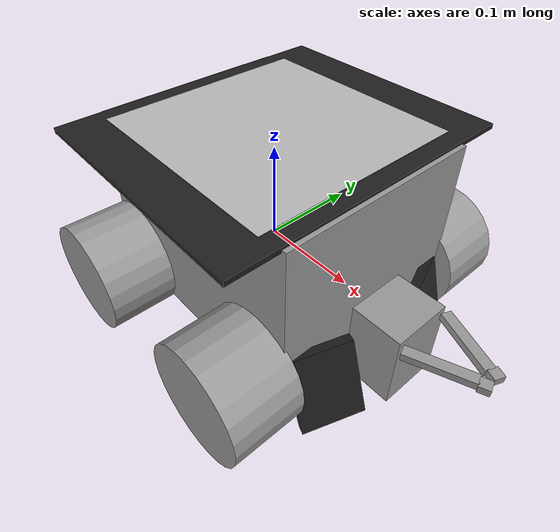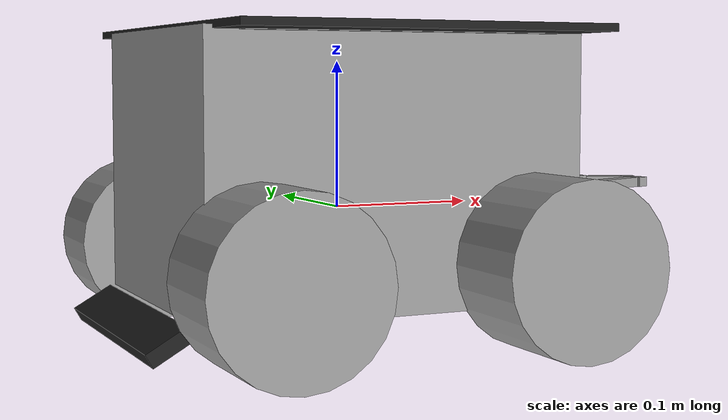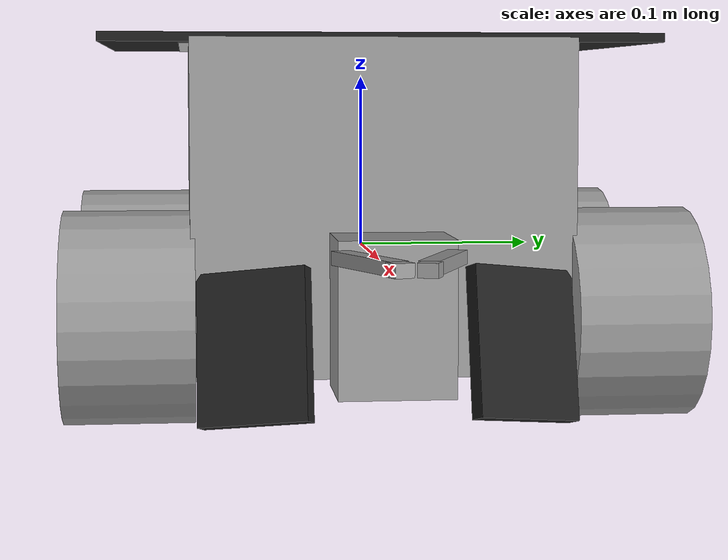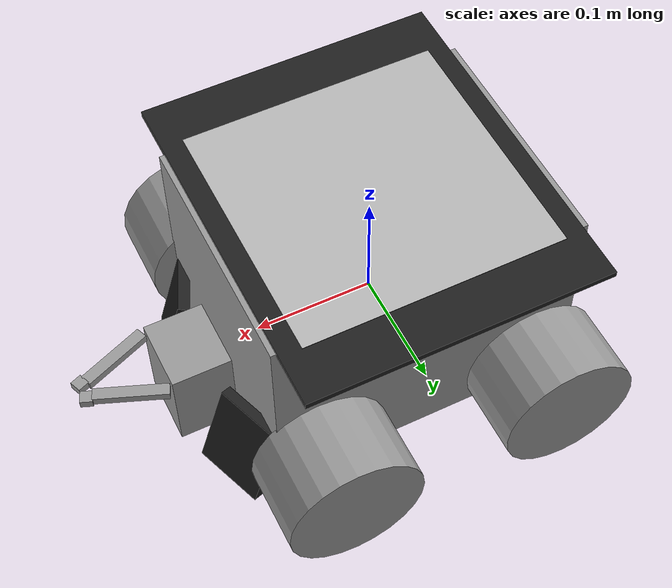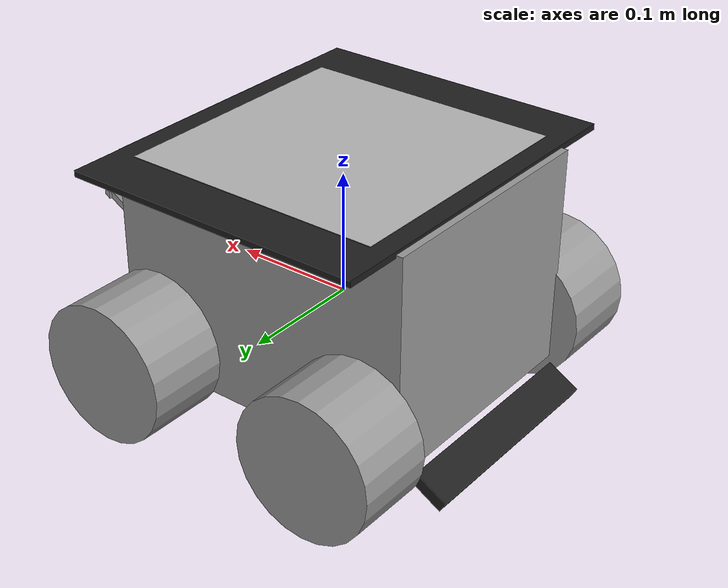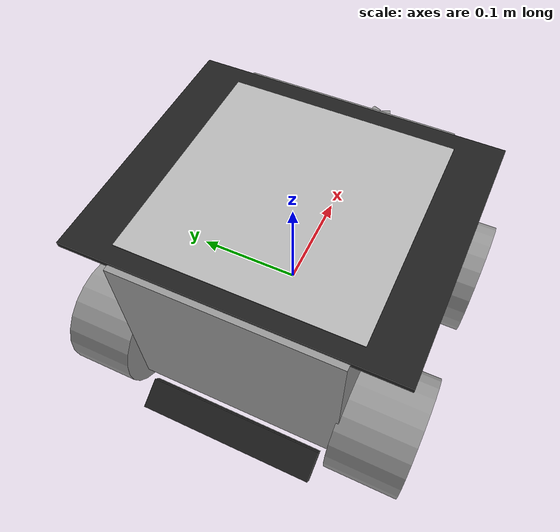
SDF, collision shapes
<?xml version='1.0'?>
<sdf version='1.4'>
	<model name="achilles">

		<static>false</static>

		<link name='base_link'>
			<inertial>
				<mass>10.0</mass>
				<inertia>
					<ixx>0.04</ixx>
					<ixy>0.0</ixy>
					<ixz>0.0</ixz>
					<iyy>0.04</iyy>
					<iyz>0.0</iyz>
					<izz>0.07</izz>
				</inertia>
			</inertial>
			<collision name='collision'>
				<pose>0 0 0.03 0 0 0</pose>
				<geometry>
					<box>
						<size>0.26 0.205 0.18</size>
					</box>
				</geometry>
			</collision>
			<visual name='visual'>
				<pose>0 0 -0.06 0 0 0</pose>
				<geometry>
					<mesh>
						<uri>model://swarmie/meshes/Body.stl</uri>
					</mesh>
				</geometry>
				<material>
					<script>
						<name>Gazebo/Grey</name>
					</script>
				</material>
			</visual>
		</link>

		<link name='top'>
			<pose>0.0006 0 0.12 0 0 0</pose>
			<inertial>
				<mass>0.2</mass>
				<inertia>
					<ixx>0.0001</ixx>
					<ixy>0.0</ixy>
					<ixz>0.0</ixz>
					<iyy>0.0001</iyy>
					<iyz>0.0</iyz>
					<izz>0.0002</izz>
				</inertia>
			</inertial>
			<collision name='collision'>
				<pose>0 0 0 0 0 0</pose>
				<geometry>
					<box>
						<size>0.25 0.30 0.005</size>
					</box>
				</geometry>
			</collision>
			<visual name='visual'>
				<geometry>
					<mesh>
						<uri>model://swarmie/meshes/CoverPlate.stl</uri>
					</mesh>
				</geometry>
				<material>
					<script>
						<name>Gazebo/FlatBlack</name>
					</script>
				</material>
			</visual>
		</link>

		<joint name="top" type="revolute">
			<parent>base_link</parent>
			<child>top</child>
			<axis>
				<xyz>0 0 0</xyz>
				<limit>
					<upper>0</upper>
					<lower>0</lower>
				</limit>
			</axis>
		</joint>

		<link name='top_apriltag'>
		  <pose>0 0 0.12 0 0 0</pose>
			<collision name='collision'>
				<geometry>
					<box>
						<size>0.2159 0.2159 0.006</size>
					</box>
				</geometry>
			</collision>
			<visual name='visual'>
				<geometry>
					<box>
						<size>0.2159 0.2159 0.006</size>
					</box>
				</geometry>
				<material>
					<script>
						<uri>model://swarmie/materials/scripts</uri>
						<uri>model://swarmie/materials/textures</uri>
						<name>apriltag_21</name>
					</script>
				</material>
			</visual>
		</link>

		<joint name="top_apriltag" type="revolute">
			<parent>base_link</parent>
			<child>top_apriltag</child>
			<axis>
				<xyz>0 0 0</xyz>
				<limit>
					<upper>0</upper>
					<lower>0</lower>
				</limit>
			</axis>
		</joint>

		<!--> Begin Cowcatcher Front <-->

		<link name='CowCatcherFront'>
			<pose>0.1675 0 -0.08 1.57079 0 0</pose>
			<inertial>
				<mass>0.2</mass>
				<inertia>
					<ixx>0.0001</ixx>
					<ixy>0.0</ixy>
					<ixz>0.0</ixz>
					<iyy>0.0001</iyy>
					<iyz>0.0</iyz>
					<izz>0.0002</izz>
				</inertia>
			</inertial>

			<collision name='left_collision'>
				<pose>-0.02 0.04 -0.07 0 0.4 0.3</pose>
				<geometry>
					<box>
					  <size>0.01 0.08 0.06</size>
					</box>
				</geometry>
			</collision>

			<collision name='right_collision'>
				<pose>-0.02 0.04 0.07 0 -0.4 0.3</pose>
				<geometry>
					<box>
					  <size>0.01 0.08 0.06</size>
					</box>
				</geometry>
			</collision>

			<visual name='visual'>
				<geometry>
					<mesh>
						<uri>model://swarmie/meshes/CowCatcherFront.stl</uri>
						<scale>0.001 0.001 0.001</scale>
					</mesh>
				</geometry>
				<material>
					<script>
						<name>Gazebo/FlatBlack</name>
					</script>
				</material>
			</visual>
		</link>

		<joint name="CowCatcherFront" type="revolute">
			<parent>base_link</parent>
			<child>CowCatcherFront</child>
			<axis>
				<xyz>0 0 0</xyz>
				<limit>
					<upper>0</upper>
					<lower>0</lower>
				</limit>
			</axis>
		</joint>

		<!--> End Cowcatcher Front <-->

		<!--> Begin Cowcatcher Rear <-->

		<link name='CowCatcherRear'>
			<pose>-0.1275 -0.1 -0.04 1.57079 0 3.1415</pose>
			<inertial>
				<mass>0.2</mass>
				<inertia>
					<ixx>0.0001</ixx>
					<ixy>0.0</ixy>
					<ixz>0.0</ixz>
					<iyy>0.0001</iyy>
					<iyz>0.0</iyz>
					<izz>0.0002</izz>
				</inertia>
			</inertial>

			<collision name='lower_collision'>
				<pose>0.02 -0.03 0.1 0 0 1.05</pose>
				<geometry>
					<box>
					  <size>0.01 0.03 0.18</size>
					</box>
				</geometry>
			</collision>

			<visual name='visual'>
				<geometry>
					<mesh>
						<uri>model://swarmie/meshes/CowCatcherRear.stl</uri>
						<scale>0.001 0.001 0.001</scale>
					</mesh>
				</geometry>
				<material>
					<script>
						<name>Gazebo/FlatBlack</name>
					</script>
				</material>
			</visual>
		</link>

		<joint name="CowCatcherRear" type="revolute">
			<parent>base_link</parent>
			<child>CowCatcherRear</child>
			<axis>
				<xyz>0 0 0</xyz>
				<limit>
					<upper>0</upper>
					<lower>0</lower>
				</limit>
			</axis>
		</joint>

		<!--> End Cowcatcher Rear <-->

	<link name="gripper_wrist">
			<inertial>
				<mass>0.085</mass>
				<inertia>
					<ixx>0.00005</ixx>
					<ixy>0.0</ixy>
					<ixz>0.0</ixz>
					<iyy>0.00006</iyy>
					<iyz>0.0</iyz>
					<izz>0.00005</izz>
				</inertia>
			</inertial>
			<visual name="visual">
				<pose>0 0 -0.06 0 0 0</pose>
				<geometry>
					<mesh>
						<uri>model://swarmie/meshes/GripperWrist.stl</uri>
					</mesh>
				</geometry>
				<material>
					<script>
						<name>Gazebo/Grey</name>
					</script>
				</material>
			</visual>
			<collision name="collision">
				<pose>0.16 0 -0.022 0 0 1.57</pose>
				<geometry>
					<box>
						<size>0.06 0.05 0.08</size>
					</box>
				</geometry>
			</collision>
		</link>

		<joint name="gripper_wrist_joint" type="revolute">
			<parent>base_link</parent>
			<child>gripper_wrist</child>
			<pose>0.136 0 -0.029 0 0 0</pose>
			<axis>
				<xyz>0 1 0</xyz>
				<limit>
					<upper>0.7854</upper>
					<lower>0.0</lower>
				</limit>
				<dynamics>
				  <damping>0.3</damping>
				</dynamics>
			</axis>
		</joint>

		<link name="gripper_left_finger">
			<inertial>
				<mass>0.005</mass>
				<inertia>
					<ixx>0.000002</ixx>
					<ixy>0.0</ixy>
					<ixz>0.0</ixz>
					<iyy>0.000002</iyy>
					<iyz>0.0</iyz>
					<izz>0.000004</izz>
				</inertia>
			</inertial>
			<collision name="collision">
				<pose>0.215 0.018 0.01 0 0 -0.38</pose>
				<geometry>
					<box>
						<size>0.06 0.01 0.007</size>
					</box>
				</geometry>
				<surface>
					<friction>
						<ode>
							<mu>0.8</mu>
							<mu2>0.7</mu2>
						</ode>
					</friction>
				</surface>
			</collision>
			<collision name="collision2">
				<pose>0.2475 0.007 0.01 0 0 -0.38</pose>
				<geometry>
					<box>
						<size>0.01 0.01 0.007</size>
					</box>
				</geometry>
				<surface>
					<friction>
						<ode>
							<mu>0.8</mu>
							<mu2>0.7</mu2>
						</ode>
					</friction>
				</surface>
			</collision>
			<visual name="visual">
				<pose>0 0 -0.06 0 0 0.0</pose>
				<geometry>
					<mesh>
						<uri>model://swarmie/meshes/GripperFingerLeft.stl</uri>
					</mesh>
				</geometry>
				<material>
					<script>
						<name>Gazebo/Grey</name>
					</script>
				</material>
			</visual>
			<sensor name='finger' type='contact'>
			  <contact>
			    <collision>collision</collision>
			  </contact>
			</sensor>
		</link>

		<joint name ="gripper_left_finger_joint" type="revolute">
			<parent>gripper_wrist</parent>
			<child>gripper_left_finger</child>
			<pose>0.1825 0.02175 0 0 0 0</pose>
			<axis>
				<xyz>0 0 1</xyz>
				<limit>
					<upper>0.7854</upper>
					<lower>0.0</lower>
				</limit>
				<dynamics>
				  <damping>0.3</damping>
				</dynamics>
			</axis>
		</joint>

		<link name="gripper_right_finger">
			<inertial>
				<mass>0.005</mass>
				<inertia>
					<ixx>0.000002</ixx>
					<ixy>0.0</ixy>
					<ixz>0.0</ixz>
					<iyy>0.000002</iyy>
					<iyz>0.0</iyz>
					<izz>0.000004</izz>
				</inertia>
			</inertial>
			<collision name="collision">
				<pose>0.215 -0.018 0.01 0 0 0.38</pose>
				<geometry>
					<box>
						<size>0.06 0.01 0.007</size>
					</box>
				</geometry>
				<surface>
					<friction>
						<ode>
							<mu>0.8</mu>
							<mu2>0.7</mu2>
						</ode>
					</friction>
				</surface>
			</collision>
			<collision name="collision2">
				<pose>0.2475 -0.007 0.01 0 0 0.38</pose>
				<geometry>
					<box>
						<size>0.01 0.01 0.007</size>
					</box>
				</geometry>
				<surface>
					<friction>
						<ode>
							<mu>0.8</mu>
							<mu2>0.7</mu2>
						</ode>
					</friction>
				</surface>
			</collision>
			<visual name="visual">
				<pose>0 0 -0.06 0 0 0</pose>
				<geometry>
					<mesh>
						<uri>model://swarmie/meshes/GripperFingerRight.stl</uri>
					</mesh>
				</geometry>
				<material>
					<script>
						<name>Gazebo/Grey</name>
					</script>
				</material>
			</visual>
			<sensor name='finger' type='contact'>
			  <contact>
			    <collision>collision</collision>
			  </contact>
			</sensor>
		</link>

		<joint name ="gripper_right_finger_joint" type="revolute">
			<parent>gripper_wrist</parent>
			<child>gripper_right_finger</child>
			<pose>0.1825 -0.02175 0 0 0 0</pose>
			<axis>
				<xyz>0 0 1</xyz>
				<limit>
					<upper>0.0</upper>
					<lower>-0.7854</lower>
				</limit>
				<dynamics>
				  <damping>0.3</damping>
				</dynamics>
			</axis>
		</joint>

		<link name="left_front_wheel">
			<pose>0.095 0.135 -0.03 0 0 0</pose>
			<inertial>
				<mass>0.5</mass>
				<inertia>
					<ixx>0.00635</ixx>
					<ixy>0.0</ixy>
					<ixz>0.0</ixz>
					<iyy>0.00635</iyy>
					<iyz>0.0</iyz>
					<izz>0.009</izz>
				</inertia>
			</inertial>
			<collision name="collision">
				<pose>0 0 0 1.5708 0 0</pose>
				<geometry>
					<cylinder>
						<radius>.0575</radius>
						<length>.07</length>
 					</cylinder>
				</geometry>
				<surface>
					<friction>
						<ode>
							<mu>0.8</mu>
							<mu2>0.7</mu2>
						</ode>
					</friction>
				</surface>
			</collision>
			<visual name="visual">
				<geometry>
					<mesh>
						<uri>model://swarmie/meshes/TireWheelLeft.stl</uri>
					</mesh>
				</geometry>
				<material>
					<script>
						<name>Gazebo/Grey</name>
					</script>
				</material>
			</visual>
		</link>

		<joint name="left_front" type="revolute">
			<parent>base_link</parent>
			<child>left_front_wheel</child>
			<axis>
				<xyz>0 1 0</xyz>
			</axis>
		</joint>

		<link name="right_front_wheel">
			<pose>0.095 -0.135 -0.03 0 0 0</pose>
			<inertial>
				<mass>0.5</mass>
				<inertia>
					<ixx>0.00635</ixx>
					<ixy>0.0</ixy>
					<ixz>0.0</ixz>
					<iyy>0.00635</iyy>
					<iyz>0.0</iyz>
					<izz>0.009</izz>
				</inertia>
			</inertial>
			<collision name="collision">
				<pose>0 0 0 -1.5708 0 0</pose>
				<geometry>
					<cylinder>
						<radius>.0575</radius>
						<length>.07</length>
					</cylinder>
				</geometry>
				<surface>
					<friction>
						<ode>
							<mu>0.8</mu>
							<mu2>0.7</mu2>
						</ode>
					</friction>
				</surface>
			</collision>
			<visual name="visual">
				<geometry>
					<mesh>
						<uri>model://swarmie/meshes/TireWheelRight.stl</uri>
					</mesh>
				</geometry>
				<material>
					<script>
						<name>Gazebo/Grey</name>
					</script>
				</material>
			</visual>
		</link>

		<joint name="right_front" type="revolute">
			<parent>base_link</parent>
			<child>right_front_wheel</child>
			<axis>
				<xyz>0 1 0</xyz>
			</axis>
		</joint>

		<link name="left_rear_wheel">
			<pose>-0.095 0.135 -0.03 0 0 0</pose>
			<inertial>
				<mass>0.5</mass>
				<inertia>
					<ixx>0.00635</ixx>
					<ixy>0.0</ixy>
					<ixz>0.0</ixz>
					<iyy>0.00635</iyy>
					<iyz>0.0</iyz>
					<izz>0.009</izz>
				</inertia>
			</inertial>
			<collision name="collision">
				<pose>0 0 0 1.5708 0 0</pose>
				<geometry>
					<cylinder>
						<radius>.0575</radius>
						<length>.065</length>
					</cylinder>
				</geometry>
				<surface>
					<friction>
						<ode>
							<mu>0.8</mu>
							<mu2>0.7</mu2>
						</ode>
					</friction>
				</surface>
			</collision>
			<visual name="visual">
				<geometry>
					<mesh>
						<uri>model://swarmie/meshes/TireWheelLeft.stl</uri>
					</mesh>
				</geometry>
				<material>
					<script>
						<name>Gazebo/Grey</name>
					</script>
				</material>
			</visual>
		</link>

		<joint name="left_rear" type="revolute">
			<parent>base_link</parent>
			<child>left_rear_wheel</child>
			<axis>
				<xyz>0 1 0</xyz>
			</axis>
		</joint>

		<link name="right_rear_wheel">
			<pose>-0.095 -0.135 -0.03 0 0 0</pose>
			<inertial>
				<mass>0.5</mass>
				<inertia>
					<ixx>0.00635</ixx>
					<ixy>0.0</ixy>
					<ixz>0.0</ixz>
					<iyy>0.00635</iyy>
					<iyz>0.0</iyz>
					<izz>0.009</izz>
				</inertia>
			</inertial>
			<collision name="collision">
				<pose>0 0 0 -1.5708 0 0</pose>
				<geometry>
					<cylinder>
						<radius>.0575</radius>
						<length>.07</length>
					</cylinder>
				</geometry>
				<surface>
					<friction>
						<ode>
							<mu>0.8</mu>
							<mu2>0.7</mu2>
						</ode>
					</friction>
				</surface>
			</collision>
			<visual name="visual">
				<geometry>
					<mesh>
						<uri>model://swarmie/meshes/TireWheelRight.stl</uri>
					</mesh>
				</geometry>
				<material>
					<script>
						<name>Gazebo/Grey</name>
					</script>
				</material>
			</visual>
		</link>

		<joint name="right_rear" type="revolute">
			<parent>base_link</parent>
			<child>right_rear_wheel</child>
			<axis>
				<xyz>0 1 0</xyz>
			</axis>
		</joint>

		<joint name="us_center_joint" type="revolute">
			<parent>base_link</parent>
			<child>us_center_link</child>
			<axis>
				<xyz>0 0 1</xyz>
				<limit>
					<upper>0</upper>
					<lower>0</lower>
				</limit>
			</axis>
		</joint>

		<link name="us_center_link">
			<sensor type="ray" name="us_center_sensor">
				<pose>0.15 0 0.053 0 0 0</pose>
				<visualize>false</visualize>
				<update_rate>5</update_rate>
				<ray>
					<scan>
						<horizontal>
							<samples>3</samples>
							<resolution>1.0</resolution>
							<min_angle>-.478</min_angle>
							<max_angle>0.478</max_angle>
						</horizontal>
					</scan>
					<range>
						<min>0.010</min>
						<max>3</max>
						<resolution>0.01</resolution>
					</range>
				</ray>
				<plugin name="us" filename="libhector_gazebo_ros_sonar.so">
					<gaussianNoise>0.005</gaussianNoise>
					<topicName>/achilles/sonarCenter</topicName>
					<frameId>us_center_link</frameId>
				</plugin>
			</sensor>
		</link>

		<joint name="us_right_joint" type="revolute">
			<parent>base_link</parent>
			<child>us_right_link</child>
			<axis>
				<xyz>0 0 1</xyz>
				<limit>
					<upper>0</upper>
					<lower>0</lower>
				</limit>
			</axis>
		</joint>

		<link name="us_right_link">
			<sensor type="ray" name="us_right_sensor">
				<pose>0.15 -0.07 0.053 0.0 0.0 -0.43633</pose>
				<visualize>false</visualize>
				<update_rate>5</update_rate>
				<ray>
					<scan>
						<horizontal>
							<samples>3</samples>
							<resolution>1.0</resolution>
							<min_angle>-.478</min_angle>
							<max_angle>0.478</max_angle>
						</horizontal>
					</scan>
					<range>
						<min>0.010</min>
						<max>3</max>
						<resolution>0.01</resolution>
					</range>
				</ray>
				<plugin name="us" filename="libhector_gazebo_ros_sonar.so">
					<gaussianNoise>0.005</gaussianNoise>
					<topicName>/achilles/sonarRight</topicName>
					<frameId>us_center_link</frameId>
				</plugin>
			</sensor>
		</link>

		<joint name="us_left_joint" type="revolute">
			<parent>base_link</parent>
			<child>us_left_link</child>
			<axis>
				<xyz>0 0 1</xyz>
				<limit>
					<upper>0</upper>
					<lower>0</lower>
				</limit>
			</axis>
		</joint>

		<link name="us_left_link">
			<sensor type="ray" name="us_left_sensor">
				<pose>0.15 0.07 0.053 0.0 0.0 0.43633</pose>
				<visualize>false</visualize>
				<update_rate>5</update_rate>
				<ray>
					<scan>
						<horizontal>
							<samples>3</samples>
							<resolution>1.0</resolution>
							<min_angle>-.478</min_angle>
							<max_angle>0.478</max_angle>
						</horizontal>
					</scan>
					<range>
						<min>0.010</min>
						<max>3</max>
						<resolution>0.01</resolution>
					</range>
				</ray>
				<plugin name="us" filename="libhector_gazebo_ros_sonar.so">
					<gaussianNoise>0.005</gaussianNoise>
					<topicName>/achilles/sonarLeft</topicName>
					<frameId>us_center_link</frameId>
				</plugin>
			</sensor>
		</link>

		<joint name="camera_joint" type="revolute">
			<parent>base_link</parent>
			<child>camera_link</child>
			<axis>
				<xyz>0 1 0</xyz>
				<limit>
					<upper>0</upper>
					<lower>0</lower>
				</limit>
			</axis>
		</joint>

		<link name="camera_link">
			<inertial>
				<mass>0.2</mass>
				<inertia>
					<ixx>0.0001</ixx>
					<ixy>0.0</ixy>
					<ixz>0.0</ixz>
					<iyy>0.0001</iyy>
					<iyz>0.0</iyz>
					<izz>0.0002</izz>
				</inertia>
			</inertial>
			<sensor type="camera" name="camera">
				<pose>0.145 -0.0162 0.088 0.0 0.628 0.0</pose>
				<visualize>false</visualize>
				<update_rate>6.0</update_rate>
				<camera name="head">
					<horizontal_fov>1.0123</horizontal_fov>
					<image>
						<width>320</width>
						<height>240</height>
						<format>B8G8R8</format>
					</image>
					<clip>
						<near>0.02</near>
						<far>300</far>
					</clip>
					<noise>
						<type>gaussian</type>
						<mean>0.0</mean>
						<stddev>0.007</stddev>
					</noise>
				</camera>
				<plugin name="camera_controller" filename="libgazebo_ros_camera.so">
					<alwaysOn>true</alwaysOn>
					<updateRate>0.0</updateRate>
					<cameraName>/achilles/camera</cameraName>
					<imageTopicName>/achilles/camera/image</imageTopicName>
					<cameraInfoTopicName>/achilles/camera/info</cameraInfoTopicName>
					<frameName>camera_link</frameName>
					<hackBaseline>0.1</hackBaseline>
					<distortionK1>0.0</distortionK1>
					<distortionK2>0.0</distortionK2>
					<distortionK3>0.0</distortionK3>
					<distortionT1>0.0</distortionT1>
					<distortionT2>0.0</distortionT2>
					<CxPrime>0.0</CxPrime>
					<Cx>0.0</Cx>
					<Cy>0.0</Cy>
					<focalLength>0.0</focalLength>
				</plugin>
			</sensor>
		</link>

		<!-- Gripper plugin-->
		<plugin name="gripper_sim" filename="libgazebo_plugins_gripper.so">
			<!-- required: joint definitions -->
			<wristJoint>gripper_wrist_joint</wristJoint>
			<leftFingerJoint>gripper_left_finger_joint</leftFingerJoint>
			<rightFingerJoint>gripper_right_finger_joint</rightFingerJoint>

			<!-- required: data input topics for this plugin -->
			<wristTopic>/achilles/wristAngle/cmd</wristTopic>
			<fingerTopic>/achilles/fingerAngle/cmd</fingerTopic>

			<!-- optional: print debug info to the console -->
			<debug>
				<!-- true (debug mode is on) or false (debug mode is off) -->
				<printToConsole>false</printToConsole>
				<!-- time (in simulated seconds) between debug print statements -->
				<printDelayInSeconds>5.0</printDelayInSeconds>
			</debug>

			<!-- optional: the refresh rate of the gripper and all debugging output -->
			<!-- this value is the number of updates performed per second -->
			<!-- warning: low values (i.e. < 100) can cause the gripper to have poor performance -->
			<updateRate>1000.0</updateRate>

			<!-- optional: set the default PID values for the wrist joint -->
			<!-- values in order: Proportional gain, Integral gain, Derivative gain -->
			<wristPID>2.5 0.0 0.0</wristPID>

			<!-- optional: set the default PID values for the finger joints -->
			<!-- values in order: Proportional gain, Integral gain, Derivative gain -->
			<!-- it is always assumed that both fingers use the same PID values -->
			<fingerPID>2.5 0.0 0.0</fingerPID>

			<!-- optional: set the min/max force applicable to the wrist joint in Newtons -->
			<!-- values in order: minimum force, maximum force -->
			<wristForceLimits>-10 10</wristForceLimits>

			<!-- optional: set the min/max force applicable to the finger joints in Newtons -->
			<!-- values in order: minimum force, maximum force -->
			<!-- it is always assumed that both fingers use the same min/max force values -->
			<fingerForceLimits>-10 10</fingerForceLimits>
		</plugin>

		<!-- Skid Steer Drive plugin -->
		<plugin name="skid_steer_drive_controller" filename="libgazebo_ros_skid_steer_drive.so">
			<updateRate>10</updateRate>
			<robotNamespace>/</robotNamespace>
			<leftFrontJoint>left_front</leftFrontJoint>
			<rightFrontJoint>right_front</rightFrontJoint>
			<leftRearJoint>left_rear</leftRearJoint>
			<rightRearJoint>right_rear</rightRearJoint>
			<wheelSeparation>0.27</wheelSeparation>
			<wheelDiameter>0.12</wheelDiameter>
			<robotBaseFrame>achilles/base_link</robotBaseFrame>
			<torque>2.8</torque>
			<commandTopic>/achilles/skidsteer</commandTopic>
			<odometryTopic>/achilles/odom</odometryTopic>
			<odometryFrame>achilles/odom</odometryFrame>
			<broadcastTF>0</broadcastTF>
		</plugin>

		<!-- GPS plugin -->
		<plugin name="gps_sim" filename="libhector_gazebo_ros_gps.so">
			<alwaysOn>1</alwaysOn>
			<updateRate>5</updateRate>
			<bodyName>base_link</bodyName>
			<frameId>achilles/base_link</frameId>
			<topicName>/achilles/fix</topicName>
			<referenceLatitude>28.584810</referenceLatitude>
			<referenceLongitude>-80.649650</referenceLongitude>
			<referenceHeading>0.0</referenceHeading>
			<referenceAltitude>10.0</referenceAltitude>
			<offset>0.0 0.0 0.0</offset>
			<drift>0.1 0.1 0</drift>
			<driftFrequency>0.0 0.0 0.0</driftFrequency>
			<gaussianNoise>0.4 0.5 0.0</gaussianNoise>
		</plugin>

		<!-- IMU plugin -->
		<plugin name="imu_sim" filename="libhector_gazebo_ros_imu.so">
			<updateRate>10</updateRate>
			<bodyName>base_link</bodyName>
			<frameId>achilles/base_link</frameId>
			<topicName>/achilles/imu</topicName>
			<xyzOffset>0 0 0</xyzOffset>
			<rpyOffset>0 0 0</rpyOffset>
			<gaussianNoise>0</gaussianNoise>
			<accelDrift>0.5 0.5 0.5</accelDrift>
			<accelGaussianNoise>0.35 0.35 0.3</accelGaussianNoise>
			<rateDrift>0.1 0.1 0.1</rateDrift>
			<rateGaussianNoise>0.05 0.05 0.015</rateGaussianNoise>
			<headingDrift>0.01</headingDrift>
			<headingGaussianNoise>0.01</headingGaussianNoise>
		</plugin>

	</model>
</sdf>
